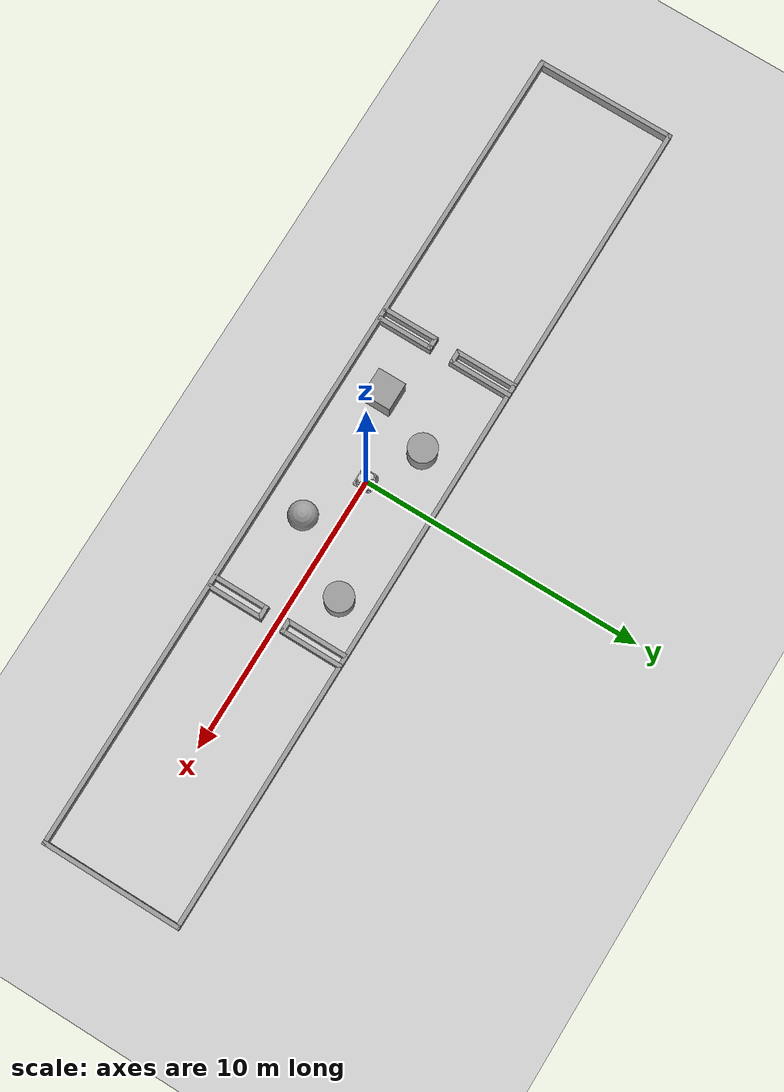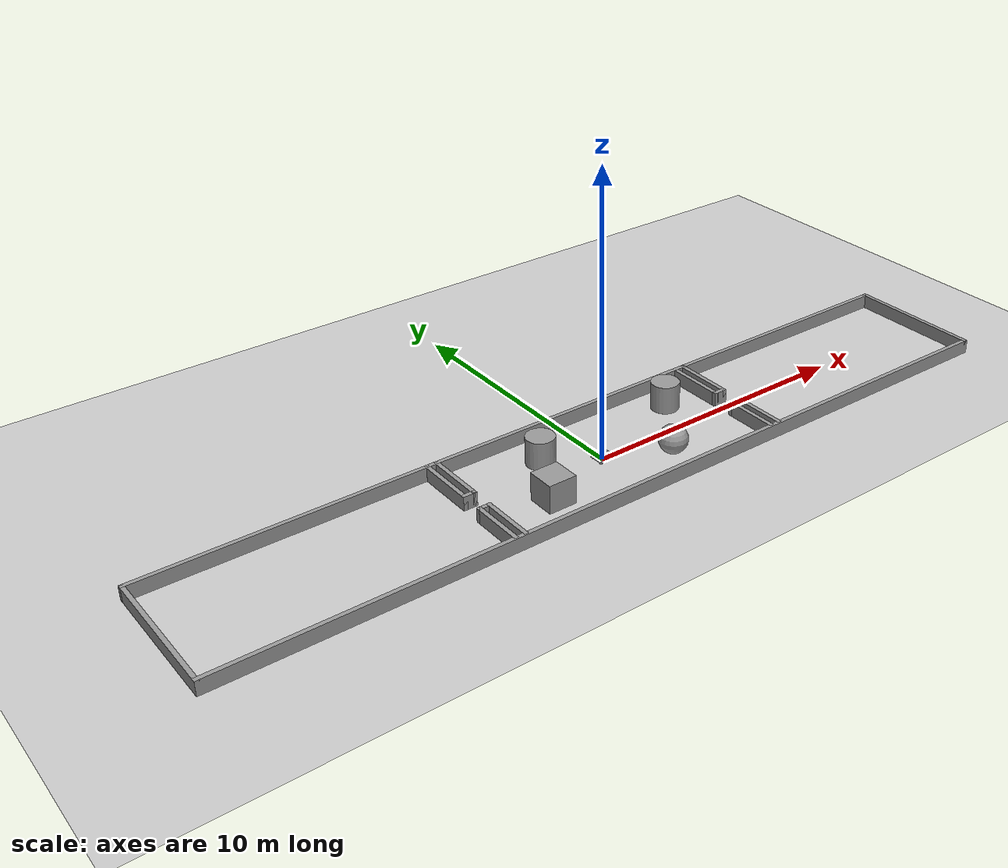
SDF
<sdf version="1.7">
 <world name="default">
  <light name="sun" type="directional">
   <pose>0 0 10 0 -0 0</pose>
   <diffuse>0.8 0.8 0.8 1</diffuse>
   <specular>0.2 0.2 0.2 1</specular>
   <attenuation>
    <range>1000</range>
    <constant>0.9</constant>
    <linear>0.01</linear>
    <quadratic>0.001</quadratic>
   </attenuation>
   <direction>-0.5 0.1 -0.9</direction>
   <spot><inner_angle>0</inner_angle><outer_angle>0</outer_angle><falloff>0</falloff></spot>
  </light>
  <model name="ground_plane">
   <static>1</static>
   <link name="link">
    <collision name="collision">
     <geometry><plane><normal>0 0 1</normal><size>100 100</size></plane></geometry>
     <surface><friction><ode><mu>100</mu><mu2>50</mu2></ode></friction></surface>
    </collision>
    <visual name="visual">
     <cast_shadows>0</cast_shadows>
     <geometry><plane><normal>0 0 1</normal><size>100 100</size></plane></geometry>
     <material>
      <script><uri>file://media/materials/scripts/gazebo.material</uri><name>Gazebo/Grey</name></script>
     </material>
    </visual>
   </link>
  </model>
  <gravity>0 0 -9.8</gravity>
  <magnetic_field>6e-06 2.3e-05 -4.2e-05</magnetic_field>
  <atmosphere type="adiabatic"/>
  <physics name="default_physics" default="0" type="ode">
   <max_step_size>0.001</max_step_size>
   <real_time_factor>1</real_time_factor>
   <real_time_update_rate>1000</real_time_update_rate>
  </physics>
  <scene><ambient>0.4 0.4 0.4 1</ambient><background>0.7 0.7 0.7 1</background><shadows>1</shadows></scene>
  <audio><device>default</device></audio>
  <spherical_coordinates>
   <surface_model>EARTH_WGS84</surface_model>
   <latitude_deg>0</latitude_deg>
   <longitude_deg>0</longitude_deg>
   <elevation>0</elevation>
   <heading_deg>0</heading_deg>
  </spherical_coordinates>
  <model name="exp_empty_rooms">
   <pose>-0.0077 0.001793 0 0 -0 0</pose>
   <link name="Wall_0">
    <collision name="Wall_0_Collision">
     <geometry><box><size>5 0.15 0.5</size></box></geometry>
     <pose>0 0 0.25 0 -0 0</pose>
    </collision>
    <visual name="Wall_0_Visual">
     <pose>0 0 0.25 0 -0 0</pose>
     <geometry><box><size>5 0.15 0.5</size></box></geometry>
     <material>
      <script><uri>file://media/materials/scripts/gazebo.material</uri><name>Gazebo/Grey</name></script>
      <ambient>1 1 1 1</ambient>
     </material>
     <meta><layer>0</layer></meta>
    </visual>
    <pose>-14.925 0 0 0 -0 -1.5708</pose>
   </link>
   <link name="Wall_1">
    <collision name="Wall_1_Collision">
     <geometry><box><size>30 0.15 0.5</size></box></geometry>
     <pose>0 0 0.25 0 -0 0</pose>
    </collision>
    <visual name="Wall_1_Visual">
     <pose>0 0 0.25 0 -0 0</pose>
     <geometry><box><size>30 0.15 0.5</size></box></geometry>
     <material>
      <script><uri>file://media/materials/scripts/gazebo.material</uri><name>Gazebo/Grey</name></script>
      <ambient>1 1 1 1</ambient>
     </material>
     <meta><layer>0</layer></meta>
    </visual>
    <pose>0 -2.425 0 0 -0 0</pose>
   </link>
   <link name="Wall_10">
    <collision name="Wall_10_Collision">
     <geometry><box><size>2.25 0.15 0.5</size></box></geometry>
     <pose>0 0 0.25 0 -0 0</pose>
    </collision>
    <visual name="Wall_10_Visual">
     <pose>0 0 0.25 0 -0 0</pose>
     <geometry><box><size>2.25 0.15 0.5</size></box></geometry>
     <material>
      <script><uri>file://media/materials/scripts/gazebo.material</uri><name>Gazebo/Grey</name></script>
      <ambient>1 1 1 1</ambient>
     </material>
     <meta><layer>0</layer></meta>
    </visual>
    <pose>-5.055 1.375 0 0 -0 -1.5708</pose>
   </link>
   <link name="Wall_11">
    <collision name="Wall_11_Collision">
     <geometry><box><size>0.5 0.15 0.5</size></box></geometry>
     <pose>0 0 0.25 0 -0 0</pose>
    </collision>
    <visual name="Wall_11_Visual">
     <pose>0 0 0.25 0 -0 0</pose>
     <geometry><box><size>0.5 0.15 0.5</size></box></geometry>
     <material>
      <script><uri>file://media/materials/scripts/gazebo.material</uri><name>Gazebo/Grey</name></script>
      <ambient>1 1 1 1</ambient>
     </material>
     <meta><layer>0</layer></meta>
    </visual>
    <pose>-4.88 0.325 0 0 -0 0</pose>
   </link>
   <link name="Wall_12">
    <collision name="Wall_12_Collision">
     <geometry><box><size>2.25 0.15 0.5</size></box></geometry>
     <pose>0 0 0.25 0 -0 0</pose>
    </collision>
    <visual name="Wall_12_Visual">
     <pose>0 0 0.25 0 -0 0</pose>
     <geometry><box><size>2.25 0.15 0.5</size></box></geometry>
     <material>
      <script><uri>file://media/materials/scripts/gazebo.material</uri><name>Gazebo/Grey</name></script>
      <ambient>1 1 1 1</ambient>
     </material>
     <meta><layer>0</layer></meta>
    </visual>
    <pose>-4.705 1.375 0 0 -0 1.5708</pose>
   </link>
   <link name="Wall_16">
    <collision name="Wall_16_Collision">
     <geometry><box><size>0.5 0.15 0.5</size></box></geometry>
     <pose>0 0 0.25 0 -0 0</pose>
    </collision>
    <visual name="Wall_16_Visual">
     <pose>0 0 0.25 0 -0 0</pose>
     <geometry><box><size>0.5 0.15 0.5</size></box></geometry>
     <material>
      <script><uri>file://media/materials/scripts/gazebo.material</uri><name>Gazebo/Grey</name></script>
      <ambient>1 1 1 1</ambient>
     </material>
     <meta><layer>0</layer></meta>
    </visual>
    <pose>-4.88 -0.525 0 0 -0 0</pose>
   </link>
   <link name="Wall_17">
    <collision name="Wall_17_Collision">
     <geometry><box><size>2 0.15 0.5</size></box></geometry>
     <pose>0 0 0.25 0 -0 0</pose>
    </collision>
    <visual name="Wall_17_Visual">
     <pose>0 0 0.25 0 -0 0</pose>
     <geometry><box><size>2 0.15 0.5</size></box></geometry>
     <material>
      <script><uri>file://media/materials/scripts/gazebo.material</uri><name>Gazebo/Grey</name></script>
      <ambient>1 1 1 1</ambient>
     </material>
     <meta><layer>0</layer></meta>
    </visual>
    <pose>-4.705 -1.45 0 0 -0 -1.5708</pose>
   </link>
   <link name="Wall_19">
    <collision name="Wall_19_Collision">
     <geometry><box><size>2 0.15 0.5</size></box></geometry>
     <pose>0 0 0.25 0 -0 0</pose>
    </collision>
    <visual name="Wall_19_Visual">
     <pose>0 0 0.25 0 -0 0</pose>
     <geometry><box><size>2 0.15 0.5</size></box></geometry>
     <material>
      <script><uri>file://media/materials/scripts/gazebo.material</uri><name>Gazebo/Grey</name></script>
      <ambient>1 1 1 1</ambient>
     </material>
     <meta><layer>0</layer></meta>
    </visual>
    <pose>-5.055 -1.45 0 0 -0 -1.5708</pose>
   </link>
   <link name="Wall_2">
    <collision name="Wall_2_Collision">
     <geometry><box><size>5 0.15 0.5</size></box></geometry>
     <pose>0 0 0.25 0 -0 0</pose>
    </collision>
    <visual name="Wall_2_Visual">
     <pose>0 0 0.25 0 -0 0</pose>
     <geometry><box><size>5 0.15 0.5</size></box></geometry>
     <material>
      <script><uri>file://media/materials/scripts/gazebo.material</uri><name>Gazebo/Grey</name></script>
      <ambient>1 1 1 1</ambient>
     </material>
     <meta><layer>0</layer></meta>
    </visual>
    <pose>14.925 0 0 0 -0 1.5708</pose>
   </link>
   <link name="Wall_3">
    <collision name="Wall_3_Collision">
     <geometry><box><size>30 0.15 0.5</size></box></geometry>
     <pose>0 0 0.25 0 -0 0</pose>
    </collision>
    <visual name="Wall_3_Visual">
     <pose>0 0 0.25 0 -0 0</pose>
     <geometry><box><size>30 0.15 0.5</size></box></geometry>
     <material>
      <script><uri>file://media/materials/scripts/gazebo.material</uri><name>Gazebo/Grey</name></script>
      <ambient>1 1 1 1</ambient>
     </material>
     <meta><layer>0</layer></meta>
    </visual>
    <pose>0 2.425 0 0 -0 3.14159</pose>
   </link>
   <link name="Wall_38">
    <collision name="Wall_38_Collision">
     <geometry><box><size>2 0.15 0.5</size></box></geometry>
     <pose>0 0 0.25 0 -0 0</pose>
    </collision>
    <visual name="Wall_38_Visual">
     <pose>0 0 0.25 0 -0 0</pose>
     <geometry><box><size>2 0.15 0.5</size></box></geometry>
     <material>
      <script><uri>file://media/materials/scripts/gazebo.material</uri><name>Gazebo/Grey</name></script>
      <ambient>1 1 1 1</ambient>
     </material>
     <meta><layer>0</layer></meta>
    </visual>
    <pose>5.185 -1.44 0 0 -0 -1.5708</pose>
   </link>
   <link name="Wall_43">
    <collision name="Wall_43_Collision">
     <geometry><box><size>0.5 0.15 0.5</size></box></geometry>
     <pose>0 0 0.25 0 -0 0</pose>
    </collision>
    <visual name="Wall_43_Visual">
     <pose>0 0 0.25 0 -0 0</pose>
     <geometry><box><size>0.5 0.15 0.5</size></box></geometry>
     <material>
      <script><uri>file://media/materials/scripts/gazebo.material</uri><name>Gazebo/Grey</name></script>
      <ambient>1 1 1 1</ambient>
     </material>
     <meta><layer>0</layer></meta>
    </visual>
    <pose>5.36 -0.515 0 0 -0 0</pose>
   </link>
   <link name="Wall_44">
    <collision name="Wall_44_Collision">
     <geometry><box><size>2 0.15 0.5</size></box></geometry>
     <pose>0 0 0.25 0 -0 0</pose>
    </collision>
    <visual name="Wall_44_Visual">
     <pose>0 0 0.25 0 -0 0</pose>
     <geometry><box><size>2 0.15 0.5</size></box></geometry>
     <material>
      <script><uri>file://media/materials/scripts/gazebo.material</uri><name>Gazebo/Grey</name></script>
      <ambient>1 1 1 1</ambient>
     </material>
     <meta><layer>0</layer></meta>
    </visual>
    <pose>5.535 -1.44 0 0 -0 -1.5708</pose>
   </link>
   <link name="Wall_47">
    <collision name="Wall_47_Collision">
     <geometry><box><size>2.25 0.15 0.5</size></box></geometry>
     <pose>0 0 0.25 0 -0 0</pose>
    </collision>
    <visual name="Wall_47_Visual">
     <pose>0 0 0.25 0 -0 0</pose>
     <geometry><box><size>2.25 0.15 0.5</size></box></geometry>
     <material>
      <script><uri>file://media/materials/scripts/gazebo.material</uri><name>Gazebo/Grey</name></script>
      <ambient>1 1 1 1</ambient>
     </material>
     <meta><layer>0</layer></meta>
    </visual>
    <pose>5.175 1.365 0 0 -0 1.5708</pose>
   </link>
   <link name="Wall_49">
    <collision name="Wall_49_Collision">
     <geometry><box><size>0.5 0.15 0.5</size></box></geometry>
     <pose>0 0 0.25 0 -0 0</pose>
    </collision>
    <visual name="Wall_49_Visual">
     <pose>0 0 0.25 0 -0 0</pose>
     <geometry><box><size>0.5 0.15 0.5</size></box></geometry>
     <material>
      <script><uri>file://media/materials/scripts/gazebo.material</uri><name>Gazebo/Grey</name></script>
      <ambient>1 1 1 1</ambient>
     </material>
     <meta><layer>0</layer></meta>
    </visual>
    <pose>5.35 0.315 0 0 -0 0</pose>
   </link>
   <link name="Wall_51">
    <collision name="Wall_51_Collision">
     <geometry><box><size>2.25 0.15 0.5</size></box></geometry>
     <pose>0 0 0.25 0 -0 0</pose>
    </collision>
    <visual name="Wall_51_Visual">
     <pose>0 0 0.25 0 -0 0</pose>
     <geometry><box><size>2.25 0.15 0.5</size></box></geometry>
     <material>
      <script><uri>file://media/materials/scripts/gazebo.material</uri><name>Gazebo/Grey</name></script>
      <ambient>1 1 1 1</ambient>
     </material>
     <meta><layer>0</layer></meta>
    </visual>
    <pose>5.525 1.365 0 0 -0 1.5708</pose>
   </link>
   <static>1</static>
  </model>
  <model name="bot">
   <link name="base_link">
    <inertial>
     <pose>0.000239 -0.005282 -0.107554 0 -0 0</pose>
     <mass>19.8548</mass>
     <inertia>
      <ixx>0.874427</ixx>
      <ixy>0.000808159</ixy>
      <ixz>0.000145235</ixz>
      <iyy>0.874952</iyy>
      <iyz>0.00161453</iyz>
      <izz>1.72754</izz>
     </inertia>
    </inertial>
    <collision name="base_link_collision">
     <geometry>
      <mesh>
       <scale>0.001 0.001 0.001</scale>
       <uri>file:///home/vansh22/ros2_dashing/Omnidrive_ws/install/bot_description/share/bot_description/meshes/base_link.stl</uri>
      </mesh>
     </geometry>
     <surface><friction><ode><mu>0.2</mu><mu2>0.2</mu2></ode></friction></surface>
    </collision>
    <collision name="base_link_fixed_joint_lump__lidar_link_collision_1">
     <geometry><cylinder><length>0.055</length><radius>0.0508</radius></cylinder></geometry>
    </collision>
    <visual name="base_link_visual">
     <geometry>
      <mesh>
       <scale>0.001 0.001 0.001</scale>
       <uri>file:///home/vansh22/ros2_dashing/Omnidrive_ws/install/bot_description/share/bot_description/meshes/base_link.stl</uri>
      </mesh>
     </geometry>
     <material>
      <script><name>Gazebo/Silver</name><uri>file://media/materials/scripts/gazebo.material</uri></script>
     </material>
    </visual>
    <visual name="base_link_fixed_joint_lump__lidar_link_visual_1">
     <geometry><cylinder><length>0.055</length><radius>0.0508</radius></cylinder></geometry>
    </visual>
    <self_collide>1</self_collide>
    <sensor name="lidar" type="ray">
     <always_on>1</always_on>
     <visualize>1</visualize>
     <update_rate>5</update_rate>
     <ray>
      <scan>
       <horizontal>
        <samples>360</samples>
        <resolution>1</resolution>
        <min_angle>0</min_angle>
        <max_angle>6.28</max_angle>
       </horizontal>
       <vertical><samples>1</samples><min_angle>0</min_angle><max_angle>0</max_angle></vertical>
      </scan>
      <range><min>0.12</min><max>3.5</max><resolution>0.015</resolution></range>
      <noise><type>gaussian</type><mean>0</mean><stddev>0.01</stddev></noise>
     </ray>
     <plugin name="scan" filename="libgazebo_ros_ray_sensor.so">
      <ros><remapping>~/out:=scan</remapping></ros>
      <output_type>sensor_msgs/LaserScan</output_type>
      <frame_name>lidar_link</frame_name>
     </plugin>
    </sensor>
   </link>
   <joint name="Revolute 1" type="revolute">
    <pose relative_to="base_link">0.224364 -0.224381 -0.13668 0 -0 0</pose>
    <parent>base_link</parent>
    <child>WHEEL_BR_1</child>
    <axis>
     <xyz>0.707107 -0.707107 0</xyz>
     <limit><lower>-1e+16</lower><upper>1e+16</upper></limit>
     <dynamics><spring_reference>0</spring_reference><spring_stiffness>0</spring_stiffness></dynamics>
    </axis>
   </joint>
   <link name="WHEEL_BR_1">
    <pose relative_to="Revolute 1">0 0 0 0 -0 0</pose>
    <inertial>
     <pose>-3e-06 -2e-06 3e-06 0 -0 0</pose>
     <mass>2.05838</mass>
     <inertia>
      <ixx>0.005254</ixx>
      <ixy>-0.001613</ixy>
      <ixz>0</ixz>
      <iyy>0.005254</iyy>
      <iyz>0</iyz>
      <izz>0.00364</izz>
     </inertia>
    </inertial>
    <collision name="WHEEL_BR_1_collision">
     <pose>-0.224364 0.224381 0.13668 0 -0 0</pose>
     <geometry>
      <mesh>
       <scale>0.001 0.001 0.001</scale>
       <uri>file:///home/vansh22/ros2_dashing/Omnidrive_ws/install/bot_description/share/bot_description/meshes/WHEEL_BR_1.stl</uri>
      </mesh>
     </geometry>
     <surface><friction><ode><mu>0.2</mu><mu2>0.2</mu2></ode></friction></surface>
    </collision>
    <visual name="WHEEL_BR_1_visual">
     <pose>-0.224364 0.224381 0.13668 0 -0 0</pose>
     <geometry>
      <mesh>
       <scale>0.001 0.001 0.001</scale>
       <uri>file:///home/vansh22/ros2_dashing/Omnidrive_ws/install/bot_description/share/bot_description/meshes/WHEEL_BR_1.stl</uri>
      </mesh>
     </geometry>
     <material>
      <script><name>Gazebo/Silver</name><uri>file://media/materials/scripts/gazebo.material</uri></script>
     </material>
    </visual>
    <self_collide>1</self_collide>
   </link>
   <joint name="Revolute 2" type="revolute">
    <pose relative_to="base_link">0.224364 0.224372 -0.13668 0 -0 0</pose>
    <parent>base_link</parent>
    <child>WHEEL_FR_1</child>
    <axis>
     <xyz>0.707107 0.707107 0</xyz>
     <limit><lower>-1e+16</lower><upper>1e+16</upper></limit>
     <dynamics><spring_reference>0</spring_reference><spring_stiffness>0</spring_stiffness></dynamics>
    </axis>
   </joint>
   <link name="WHEEL_FR_1">
    <pose relative_to="Revolute 2">0 0 0 0 -0 0</pose>
    <inertial>
     <pose>3e-06 -4e-06 3e-06 0 -0 0</pose>
     <mass>2.05838</mass>
     <inertia>
      <ixx>0.005254</ixx>
      <ixy>0.001613</ixy>
      <ixz>0</ixz>
      <iyy>0.005254</iyy>
      <iyz>0</iyz>
      <izz>0.00364</izz>
     </inertia>
    </inertial>
    <collision name="WHEEL_FR_1_collision">
     <pose>-0.224364 -0.224372 0.13668 0 -0 0</pose>
     <geometry>
      <mesh>
       <scale>0.001 0.001 0.001</scale>
       <uri>file:///home/vansh22/ros2_dashing/Omnidrive_ws/install/bot_description/share/bot_description/meshes/WHEEL_FR_1.stl</uri>
      </mesh>
     </geometry>
     <surface><friction><ode><mu>0.2</mu><mu2>0.2</mu2></ode></friction></surface>
    </collision>
    <visual name="WHEEL_FR_1_visual">
     <pose>-0.224364 -0.224372 0.13668 0 -0 0</pose>
     <geometry>
      <mesh>
       <scale>0.001 0.001 0.001</scale>
       <uri>file:///home/vansh22/ros2_dashing/Omnidrive_ws/install/bot_description/share/bot_description/meshes/WHEEL_FR_1.stl</uri>
      </mesh>
     </geometry>
     <material>
      <script><name>Gazebo/Silver</name><uri>file://media/materials/scripts/gazebo.material</uri></script>
     </material>
    </visual>
    <self_collide>1</self_collide>
   </link>
   <joint name="Revolute 3" type="revolute">
    <pose relative_to="base_link">-0.224388 0.224372 -0.13668 0 -0 0</pose>
    <parent>base_link</parent>
    <child>_WHEEL_FL_1</child>
    <axis>
     <xyz>-0.707107 0.707107 0</xyz>
     <limit><lower>-1e+16</lower><upper>1e+16</upper></limit>
     <dynamics><spring_reference>0</spring_reference><spring_stiffness>0</spring_stiffness></dynamics>
    </axis>
   </joint>
   <link name="_WHEEL_FL_1">
    <pose relative_to="Revolute 3">0 0 0 0 -0 0</pose>
    <inertial>
     <pose>-4e-06 -3e-06 3e-06 0 -0 0</pose>
     <mass>2.05838</mass>
     <inertia>
      <ixx>0.005254</ixx>
      <ixy>-0.001613</ixy>
      <ixz>0</ixz>
      <iyy>0.005254</iyy>
      <iyz>0</iyz>
      <izz>0.00364</izz>
     </inertia>
    </inertial>
    <collision name="_WHEEL_FL_1_collision">
     <pose>0.224388 -0.224372 0.13668 0 -0 0</pose>
     <geometry>
      <mesh>
       <scale>0.001 0.001 0.001</scale>
       <uri>file:///home/vansh22/ros2_dashing/Omnidrive_ws/install/bot_description/share/bot_description/meshes/_WHEEL_FL_1.stl</uri>
      </mesh>
     </geometry>
     <surface><friction><ode><mu>0.2</mu><mu2>0.2</mu2></ode></friction></surface>
    </collision>
    <visual name="_WHEEL_FL_1_visual">
     <pose>0.224388 -0.224372 0.13668 0 -0 0</pose>
     <geometry>
      <mesh>
       <scale>0.001 0.001 0.001</scale>
       <uri>file:///home/vansh22/ros2_dashing/Omnidrive_ws/install/bot_description/share/bot_description/meshes/_WHEEL_FL_1.stl</uri>
      </mesh>
     </geometry>
     <material>
      <script><name>Gazebo/Silver</name><uri>file://media/materials/scripts/gazebo.material</uri></script>
     </material>
    </visual>
    <self_collide>1</self_collide>
   </link>
   <joint name="Revolute 4" type="revolute">
    <pose relative_to="base_link">-0.224388 -0.224381 -0.13668 0 -0 0</pose>
    <parent>base_link</parent>
    <child>_WHEEL_BL_1</child>
    <axis>
     <xyz>-0.707107 -0.707107 0</xyz>
     <limit><lower>-1e+16</lower><upper>1e+16</upper></limit>
     <dynamics><spring_reference>0</spring_reference><spring_stiffness>0</spring_stiffness></dynamics>
    </axis>
   </joint>
   <link name="_WHEEL_BL_1">
    <pose relative_to="Revolute 4">0 0 0 0 -0 0</pose>
    <inertial>
     <pose>2e-06 -3e-06 3e-06 0 -0 0</pose>
     <mass>2.05838</mass>
     <inertia>
      <ixx>0.005254</ixx>
      <ixy>0.001613</ixy>
      <ixz>0</ixz>
      <iyy>0.005254</iyy>
      <iyz>0</iyz>
      <izz>0.00364</izz>
     </inertia>
    </inertial>
    <collision name="_WHEEL_BL_1_collision">
     <pose>0.224388 0.224381 0.13668 0 -0 0</pose>
     <geometry>
      <mesh>
       <scale>0.001 0.001 0.001</scale>
       <uri>file:///home/vansh22/ros2_dashing/Omnidrive_ws/install/bot_description/share/bot_description/meshes/_WHEEL_BL_1.stl</uri>
      </mesh>
     </geometry>
     <surface><friction><ode><mu>0.2</mu><mu2>0.2</mu2></ode></friction></surface>
    </collision>
    <visual name="_WHEEL_BL_1_visual">
     <pose>0.224388 0.224381 0.13668 0 -0 0</pose>
     <geometry>
      <mesh>
       <scale>0.001 0.001 0.001</scale>
       <uri>file:///home/vansh22/ros2_dashing/Omnidrive_ws/install/bot_description/share/bot_description/meshes/_WHEEL_BL_1.stl</uri>
      </mesh>
     </geometry>
     <material>
      <script><name>Gazebo/Silver</name><uri>file://media/materials/scripts/gazebo.material</uri></script>
     </material>
    </visual>
    <self_collide>1</self_collide>
   </link>
   <plugin name="control" filename="libgazebo_ros_control.so"/>
   <static>0</static>
   <plugin name="omni_controller" filename="libgazebo_ros_planar_move.so">
    <commandTopic>cmd_vel</commandTopic>
    <odometryTopic>odom</odometryTopic>
    <odometryFrame>odom</odometryFrame>
    <odometryRate>20.0</odometryRate>
    <robotBaseFrame>base_link</robotBaseFrame>
   </plugin>
   <pose>0.001793 -0.004206 0.213036 1.5e-05 -1.4e-05 0.002109</pose>
  </model>
  <model name="unit_box">
   <pose>-2.67868 -0.99457 0.499995 -1e-05 -0 -0</pose>
   <link name="link">
    <inertial>
     <mass>1</mass>
     <inertia>
      <ixx>0.166667</ixx>
      <ixy>0</ixy>
      <ixz>0</ixz>
      <iyy>0.166667</iyy>
      <iyz>0</iyz>
      <izz>0.166667</izz>
     </inertia>
    </inertial>
    <collision name="collision"><geometry><box><size>1 1 1</size></box></geometry></collision>
    <visual name="visual">
     <geometry><box><size>1 1 1</size></box></geometry>
     <material>
      <script><name>Gazebo/Grey</name><uri>file://media/materials/scripts/gazebo.material</uri></script>
     </material>
    </visual>
   </link>
  </model>
  <model name="unit_cylinder">
   <pose>3.7382 1.299 0.499993 -3e-06 -4e-06 -0</pose>
   <link name="link">
    <inertial>
     <mass>1</mass>
     <inertia><ixx>0.145833</ixx><ixy>0</ixy><ixz>0</ixz><iyy>0.145833</iyy><iyz>0</iyz><izz>0.125</izz></inertia>
    </inertial>
    <collision name="collision">
     <geometry><cylinder><radius>0.5</radius><length>1</length></cylinder></geometry>
    </collision>
    <visual name="visual">
     <geometry><cylinder><radius>0.5</radius><length>1</length></cylinder></geometry>
     <material>
      <script><name>Gazebo/Grey</name><uri>file://media/materials/scripts/gazebo.material</uri></script>
     </material>
    </visual>
   </link>
  </model>
  <model name="unit_sphere">
   <pose>2.06722 -1.08736 0.5 0 -0 0</pose>
   <link name="link">
    <inertial>
     <mass>1</mass>
     <inertia><ixx>0.1</ixx><ixy>0</ixy><ixz>0</ixz><iyy>0.1</iyy><iyz>0</iyz><izz>0.1</izz></inertia>
    </inertial>
    <collision name="collision"><geometry><sphere><radius>0.5</radius></sphere></geometry></collision>
    <visual name="visual">
     <geometry><sphere><radius>0.5</radius></sphere></geometry>
     <material>
      <script><name>Gazebo/Grey</name><uri>file://media/materials/scripts/gazebo.material</uri></script>
     </material>
    </visual>
   </link>
  </model>
  <model name="unit_cylinder_0">
   <pose>-1.68719 1.04729 0.499997 3e-06 4e-06 -0</pose>
   <link name="link">
    <inertial>
     <mass>1</mass>
     <inertia><ixx>0.145833</ixx><ixy>0</ixy><ixz>0</ixz><iyy>0.145833</iyy><iyz>0</iyz><izz>0.125</izz></inertia>
    </inertial>
    <collision name="collision">
     <geometry><cylinder><radius>0.5</radius><length>1</length></cylinder></geometry>
    </collision>
    <visual name="visual">
     <geometry><cylinder><radius>0.5</radius><length>1</length></cylinder></geometry>
     <material>
      <script><name>Gazebo/Grey</name><uri>file://media/materials/scripts/gazebo.material</uri></script>
     </material>
    </visual>
   </link>
  </model>
 </world>
</sdf>
